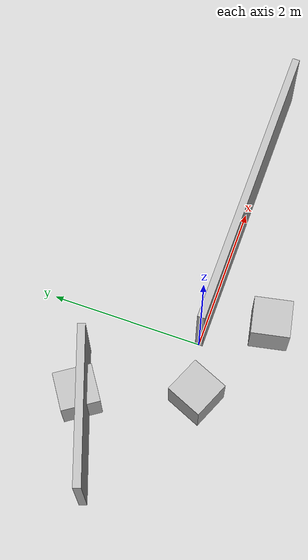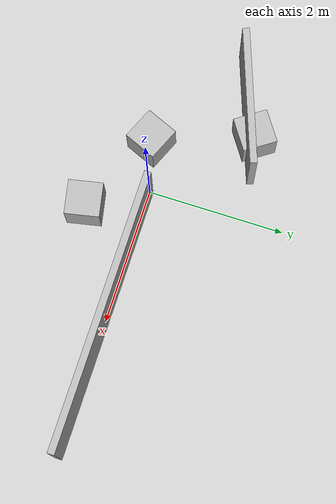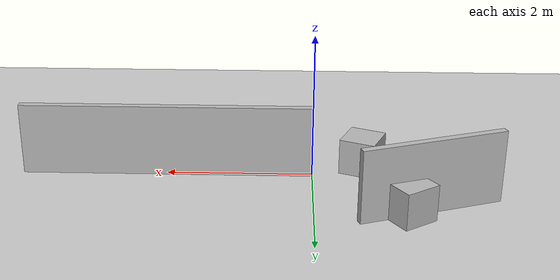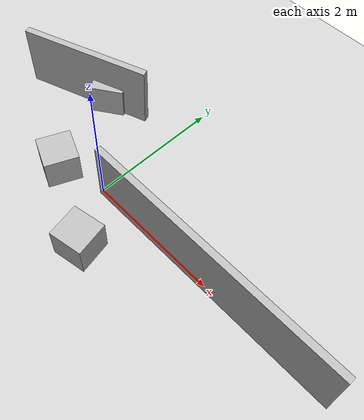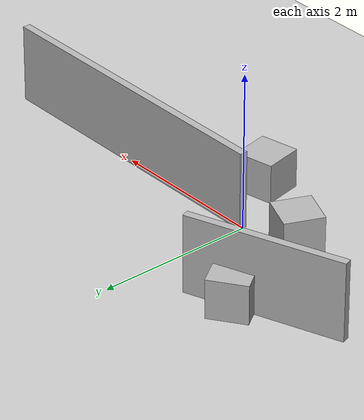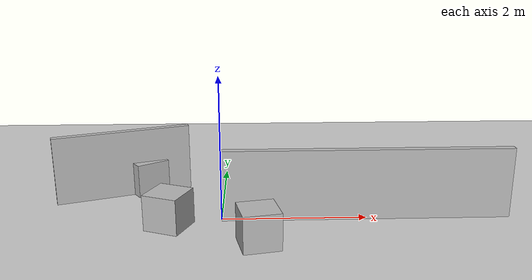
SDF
<?xml version="1.0" ?>
<sdf version="1.6">
  <world name="my_lab">
    <gravity>0 0 -9.8</gravity>
    <include><uri>model://sun</uri></include>
    <include><uri>model://ground_plane</uri></include>
    <model name="wall_A"><pose>2 0 0.5 0 0 0</pose><static>true</static><link name="l"><collision name="c"><geometry><box><size>4 0.1 1</size></box></geometry></collision><visual name="v"><geometry><box><size>4 0.1 1</size></box></geometry></visual></link></model>
    <model name="wall_B"><pose>-1.5 1.0 0.5 0 0 0.35</pose><static>true</static><link name="l"><collision name="c"><geometry><box><size>2 0.1 1</size></box></geometry></collision><visual name="v"><geometry><box><size>2 0.1 1</size></box></geometry></visual></link></model>
    <model name="box_1"><pose>0.5 -0.8 0.25 0 0 0.2</pose><static>true</static><link name="l"><collision name="c"><geometry><box><size>0.5 0.5 0.5</size></box></geometry></collision><visual name="v"><geometry><box><size>0.5 0.5 0.5</size></box></geometry></visual></link></model>
    <model name="box_2"><pose>-0.7 -0.2 0.25 0 0 -0.4</pose><static>true</static><link name="l"><collision name="c"><geometry><box><size>0.5 0.5 0.5</size></box></geometry></collision><visual name="v"><geometry><box><size>0.5 0.5 0.5</size></box></geometry></visual></link></model>
    <model name="box_3"><pose>-1.2 1.2 0.25 0 0 0.6</pose><static>true</static><link name="l"><collision name="c"><geometry><box><size>0.5 0.5 0.5</size></box></geometry></collision><visual name="v"><geometry><box><size>0.5 0.5 0.5</size></box></geometry></visual></link></model>
  </world>
</sdf>
